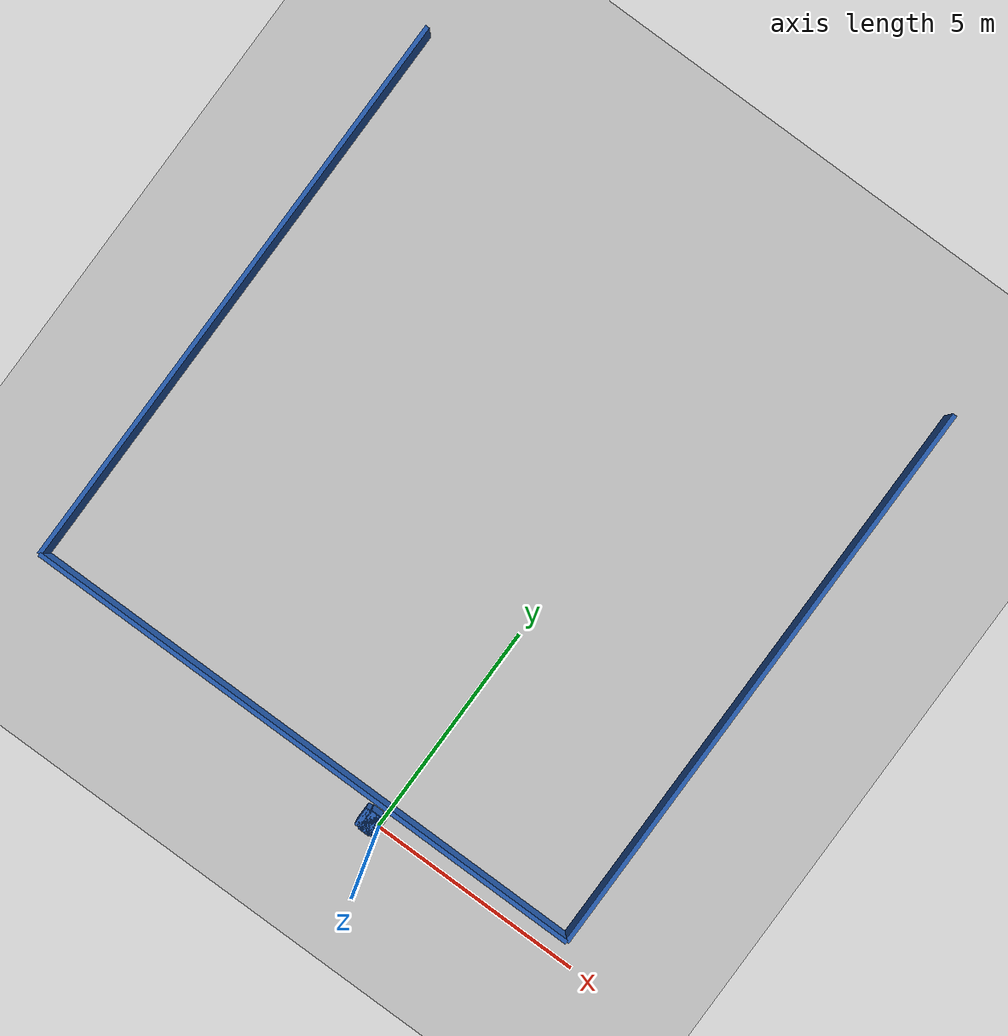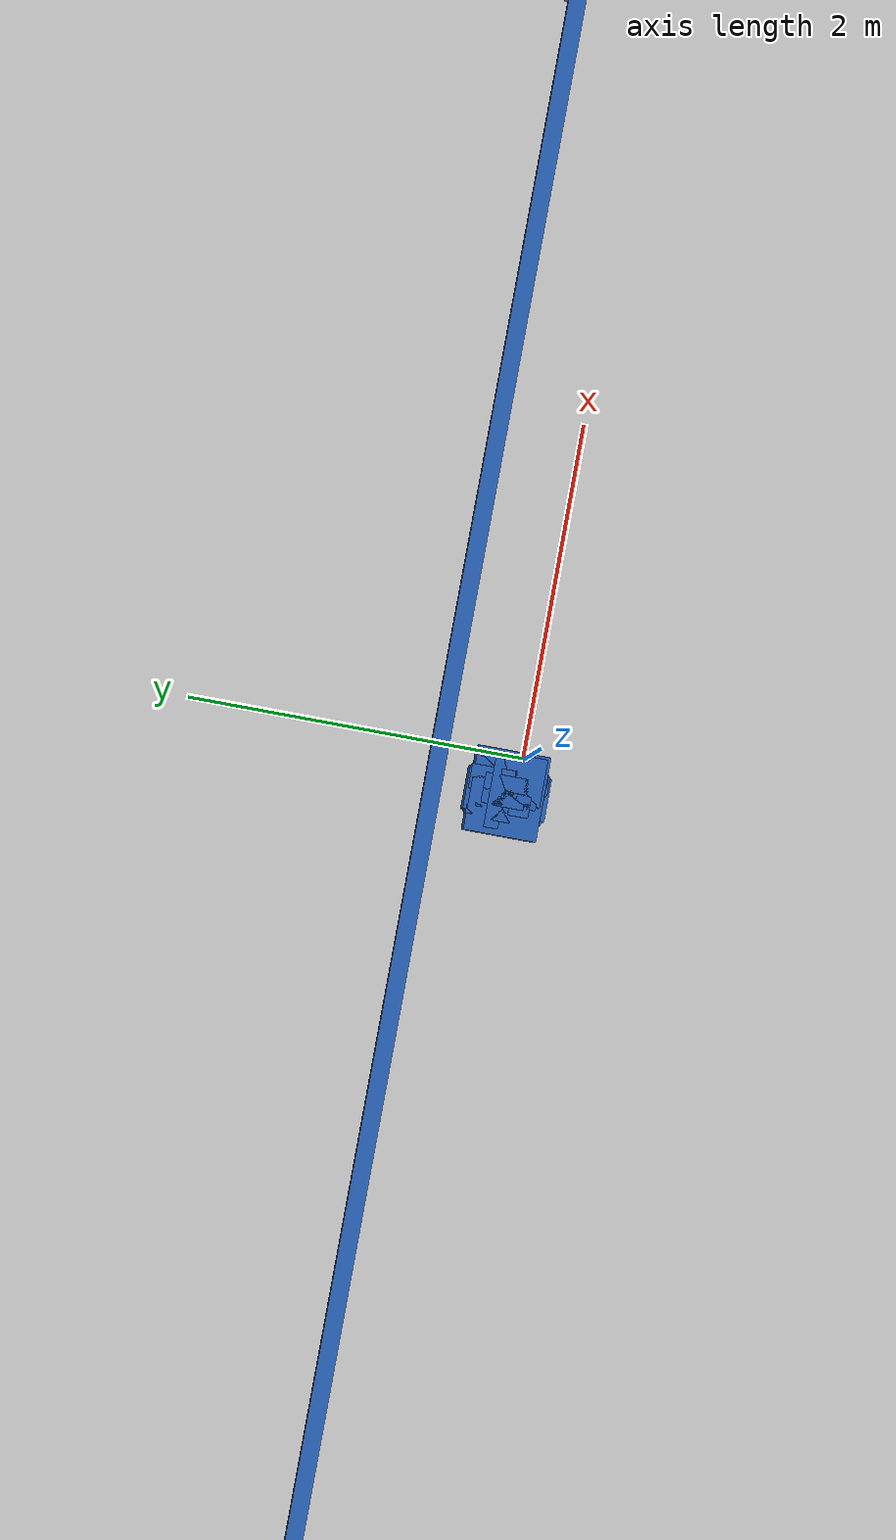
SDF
<?xml version="1.0" ?>
    <sdf version="1.5">
      <world name="default">
        <!-- A global light source -->
        <include>
          <uri>model://sun</uri>
        </include>
        <!-- A ground plane -->
        <include>
          <uri>model://ground_plane</uri>
        </include>

    <model name='libopen_space_final_T2B_81_89'>
      <static>1</static>
      <pose frame=''>-0.225000 0.075000 0.000000 0.000000 0.000000 0.000000</pose>
      <link name='link'>
        <inertial>
          <mass>1</mass>
          <inertia>
            <ixx>0.145833</ixx>
            <ixy>0</ixy>
            <ixz>0</ixz>
            <iyy>0.145833</iyy>
            <iyz>0</iyz>
            <izz>0.125</izz>
          </inertia>
        </inertial>
        <collision name='collision'>
          <geometry>
            <box>
              <size>0.27 0.45 1</size>
            </box>
          </geometry>
          <max_contacts>10</max_contacts>
          <surface>
            <contact>
              <ode/>
            </contact>
            <bounce/>
            <friction>
              <torsional>
                <ode/>
              </torsional>
              <ode/>
            </friction>
          </surface>
        </collision>
        <visual name='visual'>
          <geometry>
            <box>
              <size>0.27 0.45 1</size>
            </box>
          </geometry>
	    <material>
              <ambient>0.152000 0.379000 0.720000 1</ambient>
	      <diffuse>0.152000 0.379000 0.720000 1</diffuse>
          </material>
          <material>
            <script>
              <name>Gazebo/Grey</name>
              <uri>file://media/materials/scripts/gazebo.material</uri>
            </script>
          </material>
        </visual>
        <self_collide>0</self_collide>
        <kinematic>0</kinematic>
        <gravity>1</gravity>
      </link>
      <plugin name='libopen_space_final_T2B_81_89' filename='libopen_space_final_T2B_81_89.so'/>
    </model>

    <model name='libopen_space_final_T2B_125_86'>
      <static>1</static>
      <pose frame=''>-0.225000 0.075000 0.000000 0.000000 0.000000 0.000000</pose>
      <link name='link'>
        <inertial>
          <mass>1</mass>
          <inertia>
            <ixx>0.145833</ixx>
            <ixy>0</ixy>
            <ixz>0</ixz>
            <iyy>0.145833</iyy>
            <iyz>0</iyz>
            <izz>0.125</izz>
          </inertia>
        </inertial>
        <collision name='collision'>
          <geometry>
            <box>
              <size>0.49 0.42 1</size>
            </box>
          </geometry>
          <max_contacts>10</max_contacts>
          <surface>
            <contact>
              <ode/>
            </contact>
            <bounce/>
            <friction>
              <torsional>
                <ode/>
              </torsional>
              <ode/>
            </friction>
          </surface>
        </collision>
        <visual name='visual'>
          <geometry>
            <box>
              <size>0.49 0.42 1</size>
            </box>
          </geometry>
	    <material>
              <ambient>0.152000 0.379000 0.720000 1</ambient>
	      <diffuse>0.152000 0.379000 0.720000 1</diffuse>
          </material>
          <material>
            <script>
              <name>Gazebo/Grey</name>
              <uri>file://media/materials/scripts/gazebo.material</uri>
            </script>
          </material>
        </visual>
        <self_collide>0</self_collide>
        <kinematic>0</kinematic>
        <gravity>1</gravity>
      </link>
      <plugin name='libopen_space_final_T2B_125_86' filename='libopen_space_final_T2B_125_86.so'/>
    </model>

    <model name='libopen_space_final_T2B_111_18'>
      <static>1</static>
      <pose frame=''>-0.225000 0.075000 0.000000 0.000000 0.000000 0.000000</pose>
      <link name='link'>
        <inertial>
          <mass>1</mass>
          <inertia>
            <ixx>0.145833</ixx>
            <ixy>0</ixy>
            <ixz>0</ixz>
            <iyy>0.145833</iyy>
            <iyz>0</iyz>
            <izz>0.125</izz>
          </inertia>
        </inertial>
        <collision name='collision'>
          <geometry>
            <box>
              <size>0.33 0.16 1</size>
            </box>
          </geometry>
          <max_contacts>10</max_contacts>
          <surface>
            <contact>
              <ode/>
            </contact>
            <bounce/>
            <friction>
              <torsional>
                <ode/>
              </torsional>
              <ode/>
            </friction>
          </surface>
        </collision>
        <visual name='visual'>
          <geometry>
            <box>
              <size>0.33 0.16 1</size>
            </box>
          </geometry>
	    <material>
              <ambient>0.152000 0.379000 0.720000 1</ambient>
	      <diffuse>0.152000 0.379000 0.720000 1</diffuse>
          </material>
          <material>
            <script>
              <name>Gazebo/Grey</name>
              <uri>file://media/materials/scripts/gazebo.material</uri>
            </script>
          </material>
        </visual>
        <self_collide>0</self_collide>
        <kinematic>0</kinematic>
        <gravity>1</gravity>
      </link>
      <plugin name='libopen_space_final_T2B_111_18' filename='libopen_space_final_T2B_111_18.so'/>
    </model>

    <model name='libopen_space_final_T2B_91_57'>
      <static>1</static>
      <pose frame=''>-0.225000 0.075000 0.000000 0.000000 0.000000 0.000000</pose>
      <link name='link'>
        <inertial>
          <mass>1</mass>
          <inertia>
            <ixx>0.145833</ixx>
            <ixy>0</ixy>
            <ixz>0</ixz>
            <iyy>0.145833</iyy>
            <iyz>0</iyz>
            <izz>0.125</izz>
          </inertia>
        </inertial>
        <collision name='collision'>
          <geometry>
            <box>
              <size>0.14 0.35 1</size>
            </box>
          </geometry>
          <max_contacts>10</max_contacts>
          <surface>
            <contact>
              <ode/>
            </contact>
            <bounce/>
            <friction>
              <torsional>
                <ode/>
              </torsional>
              <ode/>
            </friction>
          </surface>
        </collision>
        <visual name='visual'>
          <geometry>
            <box>
              <size>0.14 0.35 1</size>
            </box>
          </geometry>
	    <material>
              <ambient>0.152000 0.379000 0.720000 1</ambient>
	      <diffuse>0.152000 0.379000 0.720000 1</diffuse>
          </material>
          <material>
            <script>
              <name>Gazebo/Grey</name>
              <uri>file://media/materials/scripts/gazebo.material</uri>
            </script>
          </material>
        </visual>
        <self_collide>0</self_collide>
        <kinematic>0</kinematic>
        <gravity>1</gravity>
      </link>
      <plugin name='libopen_space_final_T2B_91_57' filename='libopen_space_final_T2B_91_57.so'/>
    </model>

    <model name='libopen_space_final_T2B_94_79'>
      <static>1</static>
      <pose frame=''>-0.225000 0.075000 0.000000 0.000000 0.000000 0.000000</pose>
      <link name='link'>
        <inertial>
          <mass>1</mass>
          <inertia>
            <ixx>0.145833</ixx>
            <ixy>0</ixy>
            <ixz>0</ixz>
            <iyy>0.145833</iyy>
            <iyz>0</iyz>
            <izz>0.125</izz>
          </inertia>
        </inertial>
        <collision name='collision'>
          <geometry>
            <box>
              <size>0.27 0.11 1</size>
            </box>
          </geometry>
          <max_contacts>10</max_contacts>
          <surface>
            <contact>
              <ode/>
            </contact>
            <bounce/>
            <friction>
              <torsional>
                <ode/>
              </torsional>
              <ode/>
            </friction>
          </surface>
        </collision>
        <visual name='visual'>
          <geometry>
            <box>
              <size>0.27 0.11 1</size>
            </box>
          </geometry>
	    <material>
              <ambient>0.152000 0.379000 0.720000 1</ambient>
	      <diffuse>0.152000 0.379000 0.720000 1</diffuse>
          </material>
          <material>
            <script>
              <name>Gazebo/Grey</name>
              <uri>file://media/materials/scripts/gazebo.material</uri>
            </script>
          </material>
        </visual>
        <self_collide>0</self_collide>
        <kinematic>0</kinematic>
        <gravity>1</gravity>
      </link>
      <plugin name='libopen_space_final_T2B_94_79' filename='libopen_space_final_T2B_94_79.so'/>
    </model>

    <model name='libopen_space_final_T2B_120_90'>
      <static>1</static>
      <pose frame=''>-0.225000 0.075000 0.000000 0.000000 0.000000 0.000000</pose>
      <link name='link'>
        <inertial>
          <mass>1</mass>
          <inertia>
            <ixx>0.145833</ixx>
            <ixy>0</ixy>
            <ixz>0</ixz>
            <iyy>0.145833</iyy>
            <iyz>0</iyz>
            <izz>0.125</izz>
          </inertia>
        </inertial>
        <collision name='collision'>
          <geometry>
            <box>
              <size>0.20 0.28 1</size>
            </box>
          </geometry>
          <max_contacts>10</max_contacts>
          <surface>
            <contact>
              <ode/>
            </contact>
            <bounce/>
            <friction>
              <torsional>
                <ode/>
              </torsional>
              <ode/>
            </friction>
          </surface>
        </collision>
        <visual name='visual'>
          <geometry>
            <box>
              <size>0.20 0.28 1</size>
            </box>
          </geometry>
	    <material>
              <ambient>0.152000 0.379000 0.720000 1</ambient>
	      <diffuse>0.152000 0.379000 0.720000 1</diffuse>
          </material>
          <material>
            <script>
              <name>Gazebo/Grey</name>
              <uri>file://media/materials/scripts/gazebo.material</uri>
            </script>
          </material>
        </visual>
        <self_collide>0</self_collide>
        <kinematic>0</kinematic>
        <gravity>1</gravity>
      </link>
      <plugin name='libopen_space_final_T2B_120_90' filename='libopen_space_final_T2B_120_90.so'/>
    </model>

    <model name='libopen_space_final_T2B_94_31'>
      <static>1</static>
      <pose frame=''>-0.225000 0.075000 0.000000 0.000000 0.000000 0.000000</pose>
      <link name='link'>
        <inertial>
          <mass>1</mass>
          <inertia>
            <ixx>0.145833</ixx>
            <ixy>0</ixy>
            <ixz>0</ixz>
            <iyy>0.145833</iyy>
            <iyz>0</iyz>
            <izz>0.125</izz>
          </inertia>
        </inertial>
        <collision name='collision'>
          <geometry>
            <box>
              <size>0.16 0.21 1</size>
            </box>
          </geometry>
          <max_contacts>10</max_contacts>
          <surface>
            <contact>
              <ode/>
            </contact>
            <bounce/>
            <friction>
              <torsional>
                <ode/>
              </torsional>
              <ode/>
            </friction>
          </surface>
        </collision>
        <visual name='visual'>
          <geometry>
            <box>
              <size>0.16 0.21 1</size>
            </box>
          </geometry>
	    <material>
              <ambient>0.152000 0.379000 0.720000 1</ambient>
	      <diffuse>0.152000 0.379000 0.720000 1</diffuse>
          </material>
          <material>
            <script>
              <name>Gazebo/Grey</name>
              <uri>file://media/materials/scripts/gazebo.material</uri>
            </script>
          </material>
        </visual>
        <self_collide>0</self_collide>
        <kinematic>0</kinematic>
        <gravity>1</gravity>
      </link>
      <plugin name='libopen_space_final_T2B_94_31' filename='libopen_space_final_T2B_94_31.so'/>
    </model>

    <model name='libopen_space_final_T2B_111_12'>
      <static>1</static>
      <pose frame=''>-0.225000 0.075000 0.000000 0.000000 0.000000 0.000000</pose>
      <link name='link'>
        <inertial>
          <mass>1</mass>
          <inertia>
            <ixx>0.145833</ixx>
            <ixy>0</ixy>
            <ixz>0</ixz>
            <iyy>0.145833</iyy>
            <iyz>0</iyz>
            <izz>0.125</izz>
          </inertia>
        </inertial>
        <collision name='collision'>
          <geometry>
            <box>
              <size>0.20 0.34 1</size>
            </box>
          </geometry>
          <max_contacts>10</max_contacts>
          <surface>
            <contact>
              <ode/>
            </contact>
            <bounce/>
            <friction>
              <torsional>
                <ode/>
              </torsional>
              <ode/>
            </friction>
          </surface>
        </collision>
        <visual name='visual'>
          <geometry>
            <box>
              <size>0.20 0.34 1</size>
            </box>
          </geometry>
	    <material>
              <ambient>0.152000 0.379000 0.720000 1</ambient>
	      <diffuse>0.152000 0.379000 0.720000 1</diffuse>
          </material>
          <material>
            <script>
              <name>Gazebo/Grey</name>
              <uri>file://media/materials/scripts/gazebo.material</uri>
            </script>
          </material>
        </visual>
        <self_collide>0</self_collide>
        <kinematic>0</kinematic>
        <gravity>1</gravity>
      </link>
      <plugin name='libopen_space_final_T2B_111_12' filename='libopen_space_final_T2B_111_12.so'/>
    </model>

    <model name='libopen_space_final_T2B_51_1'>
      <static>1</static>
      <pose frame=''>-0.225000 0.075000 0.000000 0.000000 0.000000 0.000000</pose>
      <link name='link'>
        <inertial>
          <mass>1</mass>
          <inertia>
            <ixx>0.145833</ixx>
            <ixy>0</ixy>
            <ixz>0</ixz>
            <iyy>0.145833</iyy>
            <iyz>0</iyz>
            <izz>0.125</izz>
          </inertia>
        </inertial>
        <collision name='collision'>
          <geometry>
            <box>
              <size>0.30 0.43 1</size>
            </box>
          </geometry>
          <max_contacts>10</max_contacts>
          <surface>
            <contact>
              <ode/>
            </contact>
            <bounce/>
            <friction>
              <torsional>
                <ode/>
              </torsional>
              <ode/>
            </friction>
          </surface>
        </collision>
        <visual name='visual'>
          <geometry>
            <box>
              <size>0.30 0.43 1</size>
            </box>
          </geometry>
	    <material>
              <ambient>0.152000 0.379000 0.720000 1</ambient>
	      <diffuse>0.152000 0.379000 0.720000 1</diffuse>
          </material>
          <material>
            <script>
              <name>Gazebo/Grey</name>
              <uri>file://media/materials/scripts/gazebo.material</uri>
            </script>
          </material>
        </visual>
        <self_collide>0</self_collide>
        <kinematic>0</kinematic>
        <gravity>1</gravity>
      </link>
      <plugin name='libopen_space_final_T2B_51_1' filename='libopen_space_final_T2B_51_1.so'/>
    </model>

    <model name='libopen_space_final_T2B_112_54'>
      <static>1</static>
      <pose frame=''>-0.225000 0.075000 0.000000 0.000000 0.000000 0.000000</pose>
      <link name='link'>
        <inertial>
          <mass>1</mass>
          <inertia>
            <ixx>0.145833</ixx>
            <ixy>0</ixy>
            <ixz>0</ixz>
            <iyy>0.145833</iyy>
            <iyz>0</iyz>
            <izz>0.125</izz>
          </inertia>
        </inertial>
        <collision name='collision'>
          <geometry>
            <box>
              <size>0.46 0.39 1</size>
            </box>
          </geometry>
          <max_contacts>10</max_contacts>
          <surface>
            <contact>
              <ode/>
            </contact>
            <bounce/>
            <friction>
              <torsional>
                <ode/>
              </torsional>
              <ode/>
            </friction>
          </surface>
        </collision>
        <visual name='visual'>
          <geometry>
            <box>
              <size>0.46 0.39 1</size>
            </box>
          </geometry>
	    <material>
              <ambient>0.152000 0.379000 0.720000 1</ambient>
	      <diffuse>0.152000 0.379000 0.720000 1</diffuse>
          </material>
          <material>
            <script>
              <name>Gazebo/Grey</name>
              <uri>file://media/materials/scripts/gazebo.material</uri>
            </script>
          </material>
        </visual>
        <self_collide>0</self_collide>
        <kinematic>0</kinematic>
        <gravity>1</gravity>
      </link>
      <plugin name='libopen_space_final_T2B_112_54' filename='libopen_space_final_T2B_112_54.so'/>
    </model>

    <model name='libopen_space_final_T2B_79_93'>
      <static>1</static>
      <pose frame=''>-0.225000 0.075000 0.000000 0.000000 0.000000 0.000000</pose>
      <link name='link'>
        <inertial>
          <mass>1</mass>
          <inertia>
            <ixx>0.145833</ixx>
            <ixy>0</ixy>
            <ixz>0</ixz>
            <iyy>0.145833</iyy>
            <iyz>0</iyz>
            <izz>0.125</izz>
          </inertia>
        </inertial>
        <collision name='collision'>
          <geometry>
            <box>
              <size>0.42 0.20 1</size>
            </box>
          </geometry>
          <max_contacts>10</max_contacts>
          <surface>
            <contact>
              <ode/>
            </contact>
            <bounce/>
            <friction>
              <torsional>
                <ode/>
              </torsional>
              <ode/>
            </friction>
          </surface>
        </collision>
        <visual name='visual'>
          <geometry>
            <box>
              <size>0.42 0.20 1</size>
            </box>
          </geometry>
	    <material>
              <ambient>0.152000 0.379000 0.720000 1</ambient>
	      <diffuse>0.152000 0.379000 0.720000 1</diffuse>
          </material>
          <material>
            <script>
              <name>Gazebo/Grey</name>
              <uri>file://media/materials/scripts/gazebo.material</uri>
            </script>
          </material>
        </visual>
        <self_collide>0</self_collide>
        <kinematic>0</kinematic>
        <gravity>1</gravity>
      </link>
      <plugin name='libopen_space_final_T2B_79_93' filename='libopen_space_final_T2B_79_93.so'/>
    </model>

    <model name='libopen_space_final_T2B_55_44'>
      <static>1</static>
      <pose frame=''>-0.225000 0.075000 0.000000 0.000000 0.000000 0.000000</pose>
      <link name='link'>
        <inertial>
          <mass>1</mass>
          <inertia>
            <ixx>0.145833</ixx>
            <ixy>0</ixy>
            <ixz>0</ixz>
            <iyy>0.145833</iyy>
            <iyz>0</iyz>
            <izz>0.125</izz>
          </inertia>
        </inertial>
        <collision name='collision'>
          <geometry>
            <box>
              <size>0.24 0.28 1</size>
            </box>
          </geometry>
          <max_contacts>10</max_contacts>
          <surface>
            <contact>
              <ode/>
            </contact>
            <bounce/>
            <friction>
              <torsional>
                <ode/>
              </torsional>
              <ode/>
            </friction>
          </surface>
        </collision>
        <visual name='visual'>
          <geometry>
            <box>
              <size>0.24 0.28 1</size>
            </box>
          </geometry>
	    <material>
              <ambient>0.152000 0.379000 0.720000 1</ambient>
	      <diffuse>0.152000 0.379000 0.720000 1</diffuse>
          </material>
          <material>
            <script>
              <name>Gazebo/Grey</name>
              <uri>file://media/materials/scripts/gazebo.material</uri>
            </script>
          </material>
        </visual>
        <self_collide>0</self_collide>
        <kinematic>0</kinematic>
        <gravity>1</gravity>
      </link>
      <plugin name='libopen_space_final_T2B_55_44' filename='libopen_space_final_T2B_55_44.so'/>
    </model>

    <model name='libopen_space_final_T2B_61_88'>
      <static>1</static>
      <pose frame=''>-0.225000 0.075000 0.000000 0.000000 0.000000 0.000000</pose>
      <link name='link'>
        <inertial>
          <mass>1</mass>
          <inertia>
            <ixx>0.145833</ixx>
            <ixy>0</ixy>
            <ixz>0</ixz>
            <iyy>0.145833</iyy>
            <iyz>0</iyz>
            <izz>0.125</izz>
          </inertia>
        </inertial>
        <collision name='collision'>
          <geometry>
            <box>
              <size>0.15 0.28 1</size>
            </box>
          </geometry>
          <max_contacts>10</max_contacts>
          <surface>
            <contact>
              <ode/>
            </contact>
            <bounce/>
            <friction>
              <torsional>
                <ode/>
              </torsional>
              <ode/>
            </friction>
          </surface>
        </collision>
        <visual name='visual'>
          <geometry>
            <box>
              <size>0.15 0.28 1</size>
            </box>
          </geometry>
	    <material>
              <ambient>0.152000 0.379000 0.720000 1</ambient>
	      <diffuse>0.152000 0.379000 0.720000 1</diffuse>
          </material>
          <material>
            <script>
              <name>Gazebo/Grey</name>
              <uri>file://media/materials/scripts/gazebo.material</uri>
            </script>
          </material>
        </visual>
        <self_collide>0</self_collide>
        <kinematic>0</kinematic>
        <gravity>1</gravity>
      </link>
      <plugin name='libopen_space_final_T2B_61_88' filename='libopen_space_final_T2B_61_88.so'/>
    </model>

    <model name='libopen_space_final_T2B_127_53'>
      <static>1</static>
      <pose frame=''>-0.225000 0.075000 0.000000 0.000000 0.000000 0.000000</pose>
      <link name='link'>
        <inertial>
          <mass>1</mass>
          <inertia>
            <ixx>0.145833</ixx>
            <ixy>0</ixy>
            <ixz>0</ixz>
            <iyy>0.145833</iyy>
            <iyz>0</iyz>
            <izz>0.125</izz>
          </inertia>
        </inertial>
        <collision name='collision'>
          <geometry>
            <box>
              <size>0.25 0.47 1</size>
            </box>
          </geometry>
          <max_contacts>10</max_contacts>
          <surface>
            <contact>
              <ode/>
            </contact>
            <bounce/>
            <friction>
              <torsional>
                <ode/>
              </torsional>
              <ode/>
            </friction>
          </surface>
        </collision>
        <visual name='visual'>
          <geometry>
            <box>
              <size>0.25 0.47 1</size>
            </box>
          </geometry>
	    <material>
              <ambient>0.152000 0.379000 0.720000 1</ambient>
	      <diffuse>0.152000 0.379000 0.720000 1</diffuse>
          </material>
          <material>
            <script>
              <name>Gazebo/Grey</name>
              <uri>file://media/materials/scripts/gazebo.material</uri>
            </script>
          </material>
        </visual>
        <self_collide>0</self_collide>
        <kinematic>0</kinematic>
        <gravity>1</gravity>
      </link>
      <plugin name='libopen_space_final_T2B_127_53' filename='libopen_space_final_T2B_127_53.so'/>
    </model>

        <model name='bottom_wall'>
          <static>1</static>
          <pose frame=''>-2.25 0.5 0.000000 0.000000 0.000000 1.57079632</pose>
          <link name='link'>
            <inertial>
            <mass>1</mass>
            <inertia>
              <ixx>0.145833</ixx>
              <ixy>0</ixy>
              <ixz>0</ixz>
              <iyy>0.145833</iyy>
              <iyz>0</iyz>
              <izz>0.125</izz>
            </inertia>
            </inertial>
            <collision name='collision'>
            <geometry>
              <box>
              <size>0.1 13.5 1</size>
              </box>
            </geometry>
            <max_contacts>10</max_contacts>
            <surface>
              <contact>
              <ode/>
              </contact>
              <bounce/>
              <friction>
              <torsional>
                <ode/>
              </torsional>
              <ode/>
              </friction>
            </surface>
            </collision>
            <visual name='visual'>
            <geometry>
              <box>
              <size>0.1 13.5 1</size>
              </box>
            </geometry>
            <material>
              <ambient>0.152000 0.379000 0.720000 1</ambient>
            <diffuse>0.152000 0.379000 0.720000 1</diffuse>
            </material>
            <material>
              <script>
              <name>Gazebo/Grey</name>
              <uri>file://media/materials/scripts/gazebo.material</uri>
              </script>
            </material>
            </visual>
            <self_collide>0</self_collide>
            <kinematic>0</kinematic>
            <gravity>1</gravity>
          </link>
        </model>

        <model name='left_wall'>
          <static>1</static>
          <pose frame=''>-9 7.25 0.000000 0.000000 0.000000 0.000000</pose>
          <link name='link'>
            <inertial>
            <mass>1</mass>
            <inertia>
              <ixx>0.145833</ixx>
              <ixy>0</ixy>
              <ixz>0</ixz>
              <iyy>0.145833</iyy>
              <iyz>0</iyz>
              <izz>0.125</izz>
            </inertia>
            </inertial>
            <collision name='collision'>
            <geometry>
              <box>
              <size>0.1 13.5 1</size>
              </box>
            </geometry>
            <max_contacts>10</max_contacts>
            <surface>
              <contact>
              <ode/>
              </contact>
              <bounce/>
              <friction>
              <torsional>
                <ode/>
              </torsional>
              <ode/>
              </friction>
            </surface>
            </collision>
            <visual name='visual'>
            <geometry>
              <box>
              <size>0.1 13.5 1</size>
              </box>
            </geometry>
            <material>
              <ambient>0.152000 0.379000 0.720000 1</ambient>
            <diffuse>0.152000 0.379000 0.720000 1</diffuse>
            </material>
            <material>
              <script>
              <name>Gazebo/Grey</name>
              <uri>file://media/materials/scripts/gazebo.material</uri>
              </script>
            </material>
            </visual>
            <self_collide>0</self_collide>
            <kinematic>0</kinematic>
            <gravity>1</gravity>
          </link>
        </model>

        <model name='right_wall'>
          <static>1</static>
          <pose frame=''>4.5 7.25 0.000000 0.000000 0.000000 0.000000</pose>
          <link name='link'>
            <inertial>
            <mass>1</mass>
            <inertia>
              <ixx>0.145833</ixx>
              <ixy>0</ixy>
              <ixz>0</ixz>
              <iyy>0.145833</iyy>
              <iyz>0</iyz>
              <izz>0.125</izz>
            </inertia>
            </inertial>
            <collision name='collision'>
            <geometry>
              <box>
              <size>0.1 13.5 1</size>
              </box>
            </geometry>
            <max_contacts>10</max_contacts>
            <surface>
              <contact>
              <ode/>
              </contact>
              <bounce/>
              <friction>
              <torsional>
                <ode/>
              </torsional>
              <ode/>
              </friction>
            </surface>
            </collision>
            <visual name='visual'>
            <geometry>
              <box>
              <size>0.1 13.5 1</size>
              </box>
            </geometry>
            <material>
              <ambient>0.152000 0.379000 0.720000 1</ambient>
            <diffuse>0.152000 0.379000 0.720000 1</diffuse>
            </material>
            <material>
              <script>
              <name>Gazebo/Grey</name>
              <uri>file://media/materials/scripts/gazebo.material</uri>
              </script>
            </material>
            </visual>
            <self_collide>0</self_collide>
            <kinematic>0</kinematic>
            <gravity>1</gravity>
          </link>
        </model>

      </world>
    </sdf>"
